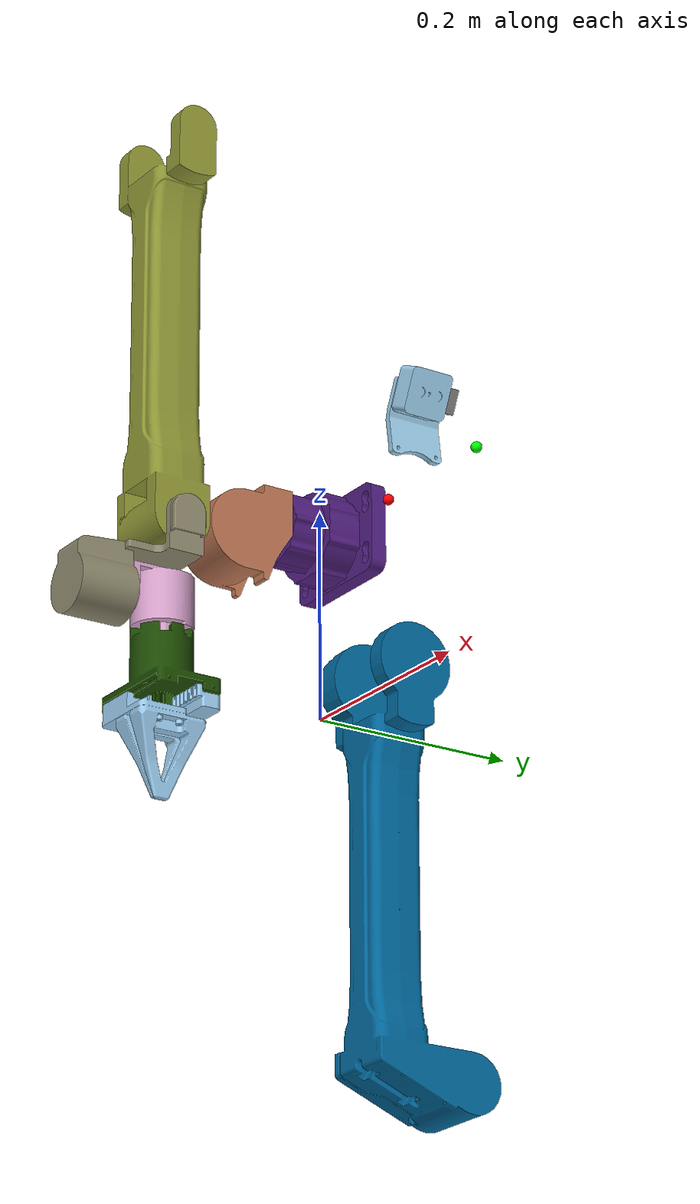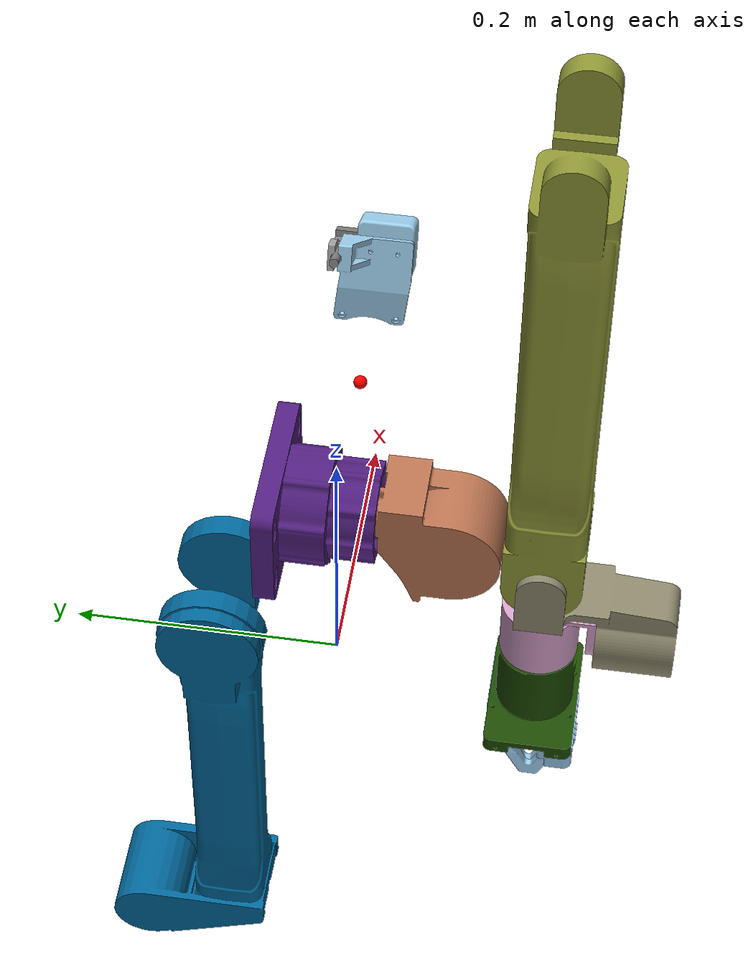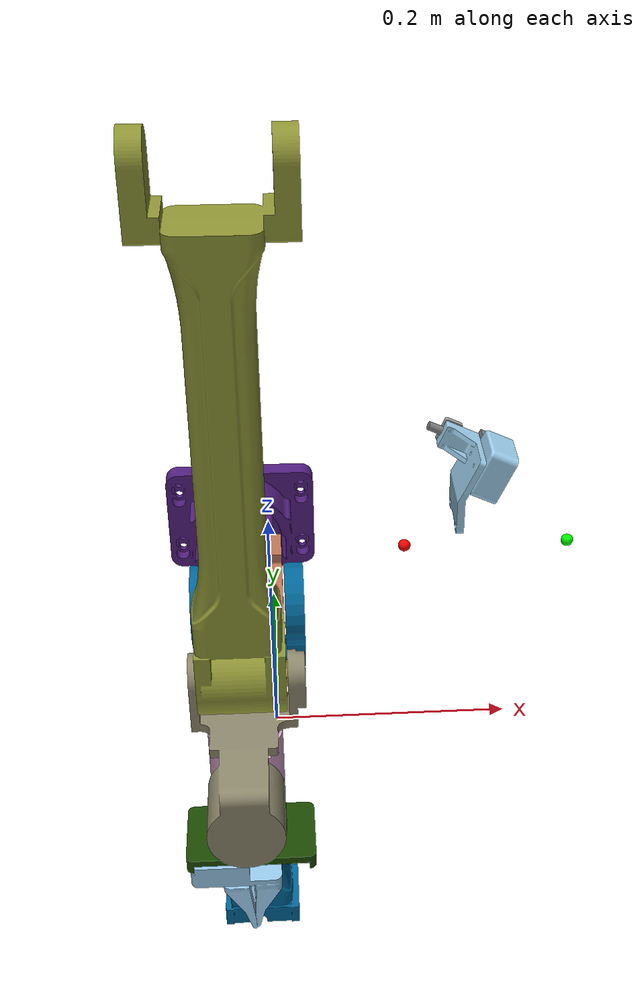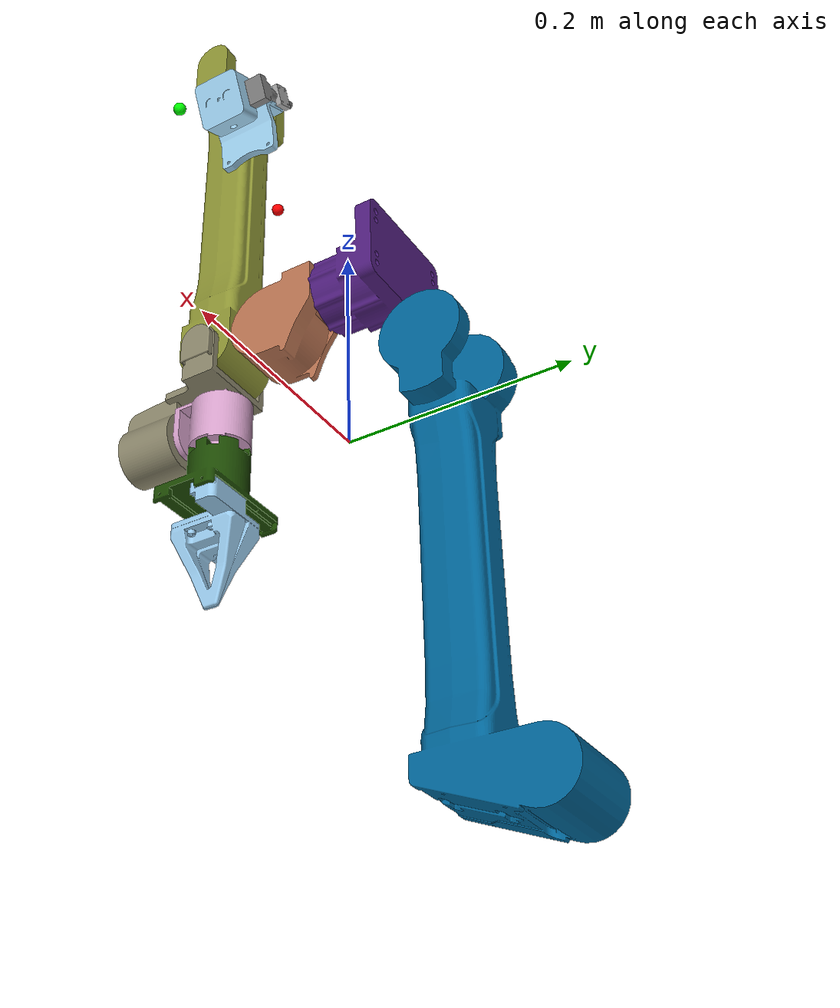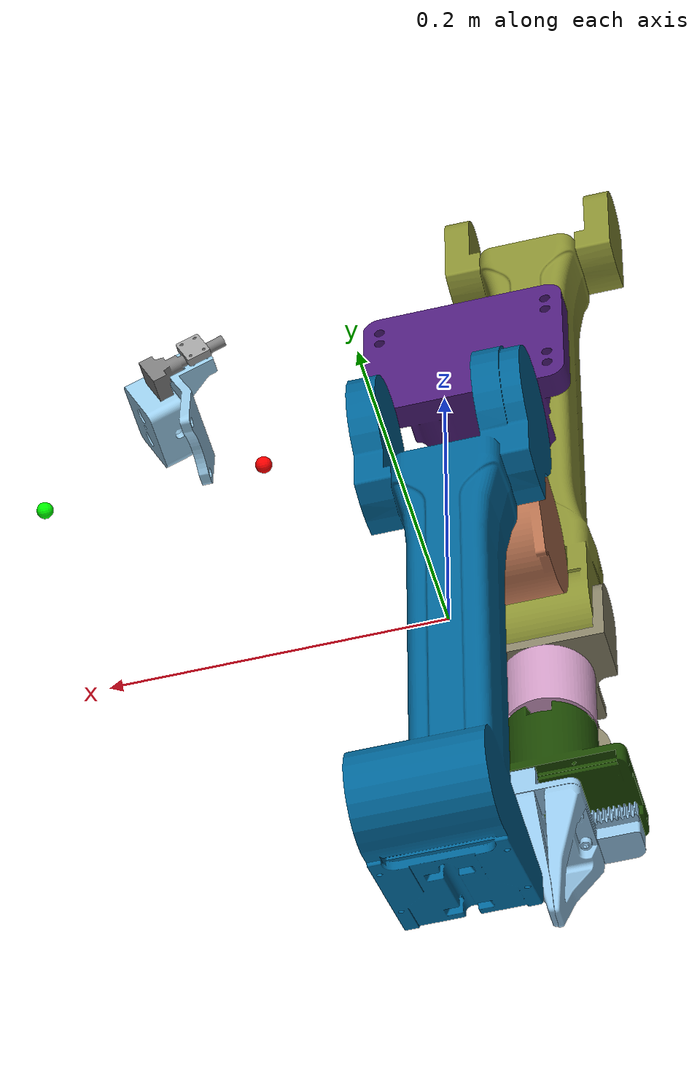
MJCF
<mujoco model="yam_linear_4310_d405">
  <compiler angle="radian" meshdir="assets"/>

  <asset>
    <mesh name="base" file="base.stl"/>
    <mesh name="link1" file="link1.stl"/>
    <mesh name="link2" file="link2.stl"/>
    <mesh name="link3" file="link3.stl"/>
    <mesh name="link4" file="link4.stl"/>
    <mesh name="link5" file="link5.stl"/>
    <mesh name="gripper" file="gripper.stl"/>
    <mesh name="tip_left" file="tip_left.stl"/>
    <mesh name="tip_right" file="tip_right.stl"/>
    <mesh name="camera_bracket_for_D405_linear_4310_" file="d405/camera_bracket_for_D405_linear_4310_.stl"/>
    <mesh name="Cable_holder" file="d405/Cable_holder.stl"/>
    <mesh name="D405_with_depth_" file="d405/D405_with_depth_.stl"/>
    <mesh name="Part_2" file="d405/Part_2.stl"/>
  </asset>

  <worldbody>
    <body name="base" pos="0 0 0" quat="1 0 0 0">
      <inertial pos="-3.83908653914762e-05 2.40068589826393e-05 0.0247677998591499" quat="0.49938139958418276 0.50073986942030346 -0.50008702432797014 -0.49979072522514489" mass="0.873654" diaginertia="0.0006783059349450743 0.0015705906697095874 0.0016940403953453367"/>
      <geom pos="0.0374957408313106 0.0464006377298596 0.187501137731438" quat="1.2986717346404163e-06 0.70710807985828106 1.2986765049368206e-06 -0.70710548251004379" type="mesh" rgba="0.317647 0.121569 0.498039 1" mesh="base"/>
      <body name="link1" pos="-2.49777947129965e-07 -9.17402363407408e-13 0.0679999999995413" quat="1.2986717346404163e-06 0.70710807985828106 1.2986765049368206e-06 -0.70710548251004379">
        <inertial pos="-0.0233636 -0.00172503 -0.00727828" quat="-0.64524361769733818 -0.21204348917963081 0.19681281961670494 0.70708057995669871" mass="0.101218" diaginertia="4.7181498384517786e-05 0.00010625072855078136 0.0001349130730647009"/>
        <joint name="joint1" pos="0 0 0" axis="-1 0 0" type="hinge" range="-2.6179899999999998 3.1415899999999999"/>
        <geom pos="-0.119501 -0.0464 -0.0374968" quat="1 0 0 0" type="mesh" rgba="0.72549 0.45098 0.317647 1" mesh="link1"/>
        <body name="link2" pos="-0.0455 -0.0339 -0.02" quat="-1.3267948966775328e-06 -2.7755480900231666e-17 -8.9765036825909428e-17 0.99999999999911982">
          <inertial pos="0.000134495 -0.0331253 0.129165" quat="-2.3368140745090923e-05 0.70711781940433782 -0.00013679930974081877 0.70709572917726882" mass="1.46908" diaginertia="0.00080008827848097137 0.014599000706208605 0.014668600015310418"/>
          <joint name="joint2" pos="0 0 0" axis="3.58252e-15 1 -3.2007e-16" type="hinge" range="-8.8817800000000003e-16 3.6651899999999999"/>
          <geom pos="-0.0740001 -0.08025 -0.0174977" quat="1 0 0 0" type="mesh" rgba="0 0.4 0.6 1" mesh="link2"/>
          <body name="link3" pos="4.08431e-07 -0.0688 0.264" quat="-1.3267948966775328e-06 8.0075198688792089e-15 -1.4975089375676686e-14 0.99999999999911982">
            <inertial pos="-0.0556042 -0.0340514 -0.135083" quat="0.6673095083601458 -0.084819836562637627 0.73417432797379689 0.092150265989044328" mass="0.982553" diaginertia="0.00087644191886574482 0.0076296046064632606 0.0076519794746709975"/>
            <joint name="joint3" pos="0 0 0" axis="4.54273e-15 1 1.04275e-14" type="hinge" range="0 3.1415899999999999"/>
            <geom pos="-0.0740003 -0.0813 -0.281499" quat="1 0 0 0" type="mesh" rgba="0.552941 0.580392 0.203922 1" mesh="link3"/>
            <body name="link4" pos="-0.0600003 -0.0688 -0.244999" quat="1 1.4776800000000448e-14 4.2618699999999842e-14 -1.0529250000000629e-14">
              <inertial pos="-0.0550959 0.032726 -0.0575534" quat="0.10060722133102601 0.94108569945662934 -0.07975559657973047 0.31284970530350159" mass="0.462165" diaginertia="0.00028778996544839548 0.00076643008992378317 0.00078788794462782174"/>
              <joint name="joint4" pos="0 0 0" axis="0 1 0" type="hinge" range="-1.6929700000000001 1.5708"/>
              <geom pos="-0.0140003 -0.0125 -0.0364989" quat="1 0 0 0" type="mesh" rgba="0.545098 0.52549 0.419608 1" mesh="link4"/>
              <body name="link5" pos="-0.0405003 0.0338995 -0.0739989" quat="1 1.36632e-14 -2.1647800000000058e-16 -4.1633349999997041e-17">
                <inertial pos="0.0375847 -3.55003e-05 -0.000825911" quat="0.64668614070190822 0.64239183561513957 0.28865586152813083 -0.29292927229031912" mass="0.403307" diaginertia="0.00016964735642963316 0.00019568620481229821 0.00021979443875806869"/>
                <joint name="joint5" pos="0 0 0" axis="1 0 0" type="hinge" range="-1.5708 1.5708"/>
                <geom pos="0.0265 -0.0463995 0.0375" quat="1 0 0 0" type="mesh" rgba="0.827451 0.623529 0.784314 1" mesh="link5"/>
                <body name="gripper" pos="0.0404996 2.39858e-07 -0.0356" quat="1 4.4165450000001136e-16 -2.9429399999998301e-16 3.8493050000000002e-14">
                  <inertial pos="-3.57064e-05 0.000249371 -0.0293133" quat="0.46927169132785929 0.53240970503245577 -0.47539637032458276 -0.5199252607709649" mass="0.553219" diaginertia="0.00032441493150336118 0.00036975817680782921 0.00040968689168880947"/>
                  <joint name="joint6" pos="0 0 0" axis="1.46014e-15 2.40808e-14 -1" type="hinge" range="-2.0943999999999998 2.0943999999999998"/>
                  <geom pos="-0.014 -0.0463995 0.0731" quat="1 0 0 0" type="mesh" rgba="0.109804 0.286275 0.0117647 1" mesh="gripper" contype="0" conaffinity="0"/>
                  <site name="tcp_site" pos="0 0 0" quat="0 1 0 0" size="0.005" rgba="1 0 0 1"/>
                  <site name="grasp_site" pos="0 0 -0.1347" quat="0 1 0 0" size="0.005" rgba="0 1 0 1"/>
                  <body name="tip_left" pos="-0.0239931 0.0445119 -0.0566829" quat="1 5.1114499999999999e-15 2.3592250000000428e-16 8.415699999999988e-16">
                    <inertial pos="0.014584 -0.042586 -0.0228318" quat="0.65772074107926914 -0.57926972033349222 0.48096190187968513 -0.022927424608338076" mass="0.069657" diaginertia="2.7986230132096179e-05 5.9460494201959903e-05 6.1856875665943902e-05"/>
                    <joint name="joint7" pos="0 0 0" axis="-6.86541e-15 -1 0" type="slide" range="0 0.046949999999999999"/>
                    <geom pos="0.00999321 -0.0914614 0.129783" quat="1 0 0 0" type="mesh" rgba="0.596078 0.788235 0.921569 1" mesh="tip_left"/>
                  </body>
                  <body name="tip_right" pos="0.0239931 -0.0445119 -0.0566829" quat="1 4.8042000000000002e-15 -1.3877800000000907e-16 -1.8859449999999991e-15">
                    <inertial pos="-0.014584 0.042586 -0.0228318" quat="0.48096190187968502 0.022927424608338073 0.65772074107926903 0.57926972033349211" mass="0.069657" diaginertia="2.7986230132096179e-05 5.9460494201959903e-05 6.1856875665943902e-05"/>
                    <joint name="joint8" pos="0 0 0" axis="6.86541e-15 1 0" type="slide" range="0 0.046949999999999999"/>
                    <geom pos="-0.0379932 -0.00133753 0.129783" quat="1 0 0 0" type="mesh" rgba="0.596078 0.788235 0.921569 1" mesh="tip_right"/>
                  </body>
                  <body name="camera_bracket" pos="0 6.25659e-16 -0.045" quat="-0.70710548251123628 -3.3586184221761277e-15 0.70710807985947355 -3.3586060853044576e-15">
                    <inertial pos="-0.000109967 -0.00055289 0.0633188" quat="-0.038898119428087873 0.7383101251346067 0.1499458658856348 -0.65643075242746429" mass="2.33302e-05" diaginertia="5.816594550261556e-09 1.0937827496312969e-08 1.5532057953425472e-08"/>
                    <geom pos="0 0.026 0.02375" quat="1 0 0 0" type="mesh" rgba="0.615686 0.811765 0.929412 1" mesh="camera_bracket_for_D405_linear_4310_" contype="0" conaffinity="0"/>
                    <body name="camera_cable_holder" pos="0 0.026 0.02375" quat="1 0 0 8.0714999999999994e-43">
                      <inertial pos="0.00792011 -0.0526778 0.0654133" quat="0.59636771221484874 0.59636771221484863 0.37992835091320487 -0.37992835091320487" mass="1.16142e-06" diaginertia="2.3762769963238307e-11 4.5938030036761689e-11 6.5160499999999989e-11"/>
                      <geom pos="0 0 0" quat="1 0 0 0" type="mesh" rgba="0.647059 0.647059 0.647059 1" mesh="Cable_holder" contype="0" conaffinity="0"/>
                    </body>
                    <body name="camera_body" pos="-0.0111607 0.019 0.0801554" quat="0.59636747771196597 0.37992630196515231 0.37992769751494671 0.59636966829605187">
                      <inertial pos="-0.00986755 8.25648e-05 -0.0115459" quat="0.70446880113277499 -0.0013124343852734738 -0.00315198311984721 0.70972674371827582" mass="3.92664e-05" diaginertia="7.332060091669388e-09 7.381077769722694e-09 1.1280182138607923e-08"/>
                      <geom pos="-0.01 0 -0.023" quat="1 0 0 0" type="mesh" rgba="0.615686 0.811765 0.929412 1" mesh="D405_with_depth_" contype="0" conaffinity="0"/>
                      <body name="camera_cover" pos="-0.01 0 -0.023" quat="1 -7.5689999979511011e-67 7.8885999999999999e-31 -2.366585e-30">
                        <inertial pos="-0.0301543 -9.29024e-19 0.0250188" quat="7.0592364581229574e-17 0.73721435155243475 -8.2591776558927486e-17 -0.6756589375307066" mass="5.70792e-06" diaginertia="2.495474365437898e-10 1.0714199999999996e-09 1.1450735634562102e-09"/>
                        <geom pos="0 0 0" quat="1 0 0 0" type="mesh" rgba="0.498039 0.498039 0.498039 1" mesh="Part_2" contype="0" conaffinity="0"/>
                      </body>
                      <body name="camera" pos="-0.019 0 -0.023" quat="1.3267948966775328e-06 0.99999999999911982 -2.3665839533424946e-30 -7.8886313997220622e-31">
                        <inertial pos="0 0 0" quat="1 0 0 0" mass="1e-09" diaginertia="4e-14 4e-14 4e-14"/>
                      </body>
                    </body>
                  </body>
                </body>
              </body>
            </body>
          </body>
        </body>
      </body>
    </body>
  </worldbody>

  <equality>
    <joint joint1="joint7" joint2="joint8" polycoef="0 1 0 0 0"/>
  </equality>

  <contact>
    <exclude body1="gripper" body2="tip_left"/>
    <exclude body1="gripper" body2="tip_right"/>
    <exclude body1="tip_left" body2="tip_right"/>
  </contact>
</mujoco>
